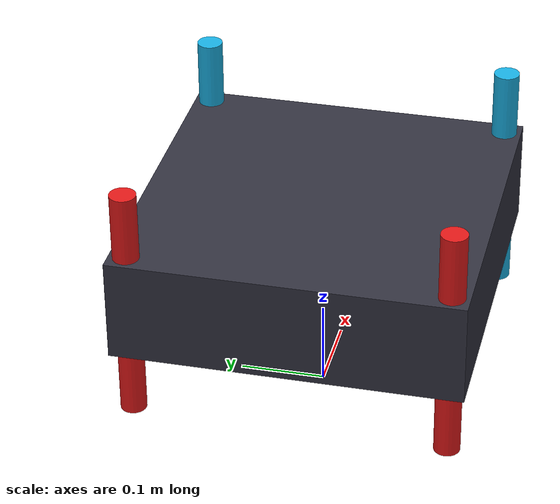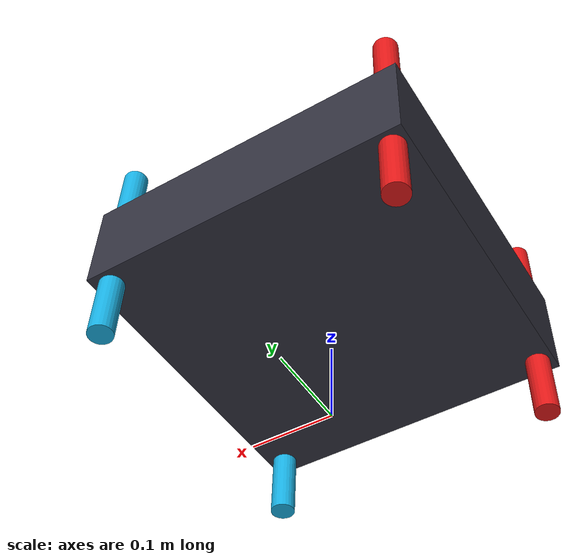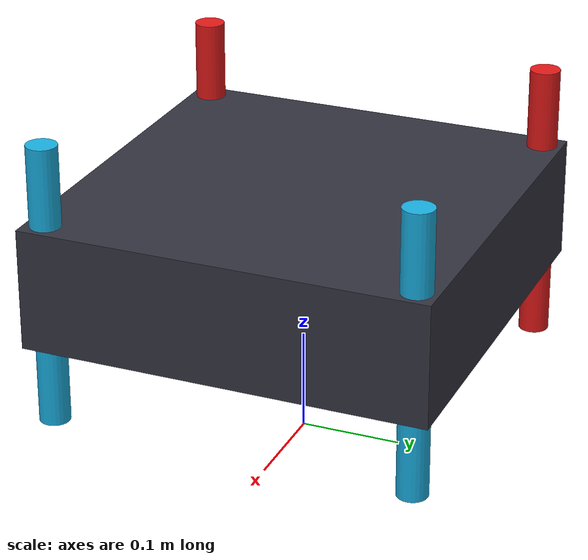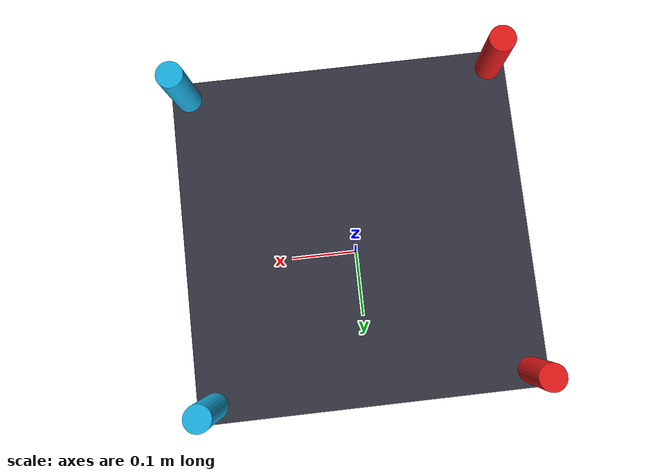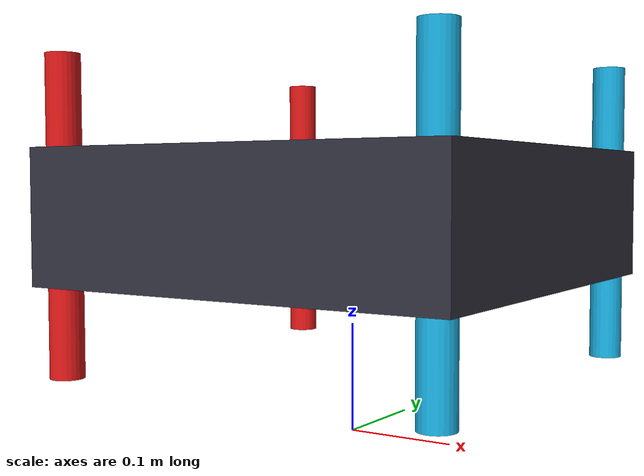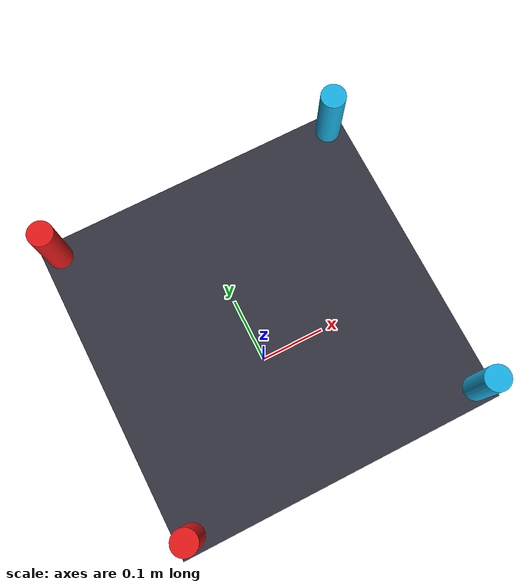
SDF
<?xml version="1.0" encoding="UTF-8"?>
<sdf version="1.9">
  <model name="rescue_drone">
    <pose>0 0 0.2 0 0 0</pose>
    <static>false</static>

    <!-- Main Airframe Link -->
    <link name="base_link">
      <gravity>false</gravity>
      <inertial>
        <mass>1.5</mass>
        <inertia>
          <ixx>0.025</ixx>
          <ixy>0.0</ixy>
          <ixz>0.0</ixz>
          <iyy>0.025</iyy>
          <iyz>0.0</iyz>
          <izz>0.045</izz>
        </inertia>
      </inertial>

      <!-- Center Body Chassis -->
      <collision name="chassis_collision">
        <geometry><box><size>0.4 0.4 0.12</size></box></geometry>
      </collision>
      <visual name="chassis_visual">
        <geometry><box><size>0.4 0.4 0.12</size></box></geometry>
        <material>
          <ambient>0.1 0.1 0.12 1.0</ambient>
          <diffuse>0.2 0.2 0.25 1.0</diffuse>
        </material>
      </visual>

      <!-- Front Left Arm (Motor 1) -->
      <visual name="arm_fl_visual">
        <pose>0.18 0.18 0 0 0 0.785</pose>
        <geometry><cylinder><radius>0.015</radius><length>0.28</length></cylinder></geometry>
        <material><ambient>0.1 0.7 0.9 1.0</ambient><diffuse>0.1 0.7 0.9 1.0</diffuse></material>
      </visual>

      <!-- Front Right Arm (Motor 2) -->
      <visual name="arm_fr_visual">
        <pose>0.18 -0.18 0 0 0 -0.785</pose>
        <geometry><cylinder><radius>0.015</radius><length>0.28</length></cylinder></geometry>
        <material><ambient>0.1 0.7 0.9 1.0</ambient><diffuse>0.1 0.7 0.9 1.0</diffuse></material>
      </visual>

      <!-- Rear Left Arm (Motor 3) -->
      <visual name="arm_rl_visual">
        <pose>-0.18 0.18 0 0 0 -0.785</pose>
        <geometry><cylinder><radius>0.015</radius><length>0.28</length></cylinder></geometry>
        <material><ambient>0.8 0.1 0.1 1.0</ambient><diffuse>0.9 0.1 0.1 1.0</diffuse></material>
      </visual>

      <!-- Rear Right Arm (Motor 4) -->
      <visual name="arm_rr_visual">
        <pose>-0.18 -0.18 0 0 0 0.785</pose>
        <geometry><cylinder><radius>0.015</radius><length>0.28</length></cylinder></geometry>
        <material><ambient>0.8 0.1 0.1 1.0</ambient><diffuse>0.9 0.1 0.1 1.0</diffuse></material>
      </visual>

      <!-- Downward/Angled Rescue Searchlight (Night Operations) -->
      <light type="spot" name="searchlight">
        <pose>0.1 0 -0.05 0 0.785 0</pose> <!-- Angled 45 deg down forward -->
        <diffuse>1.0 0.95 0.8 1.0</diffuse>
        <specular>0.8 0.8 0.8 1.0</specular>
        <attenuation>
          <range>40</range>
          <constant>0.2</constant>
          <linear>0.05</linear>
          <quadratic>0.005</quadratic>
        </attenuation>
        <spot>
          <inner_angle>0.3</inner_angle>
          <outer_angle>0.6</outer_angle>
          <falloff>1.0</falloff>
        </spot>
        <direction>0 0 -1</direction>
      </light>

      <!-- Downward/Forward RGB Camera Sensor -->
      <sensor name="camera" type="camera">
        <pose>0.15 0 -0.05 0 0.52 0</pose> <!-- Tilted 30 degrees down -->
        <always_on>1</always_on>
        <update_rate>20</update_rate>
        <visualize>true</visualize>
        <topic>camera/image_raw</topic>
        <camera>
          <horizontal_fov>1.3962634</horizontal_fov> <!-- 80 deg FOV -->
          <image>
            <width>640</width>
            <height>480</height>
            <format>R8G8B8</format>
          </image>
          <clip>
            <near>0.1</near>
            <far>100</far>
          </clip>
        </camera>
      </sensor>

      <!-- Downward/Forward Thermal IR Camera Sensor -->
      <sensor name="thermal_camera" type="camera">
        <pose>0.15 0.05 -0.05 0 0.52 0</pose> <!-- Tilted 30 degrees down, offset slightly from RGB -->
        <always_on>1</always_on>
        <update_rate>10</update_rate>
        <visualize>true</visualize>
        <topic>thermal_camera/image_raw</topic>
        <camera>
          <horizontal_fov>1.047</horizontal_fov> <!-- 60 deg FOV -->
          <image>
            <width>640</width>
            <height>480</height>
            <format>R8G8B8</format>
          </image>
          <clip>
            <near>0.1</near>
            <far>100</far>
          </clip>
        </camera>
      </sensor>

      <!-- IMU Sensor -->
      <sensor name="imu" type="imu">
        <always_on>1</always_on>
        <update_rate>50</update_rate>
        <topic>imu</topic>
      </sensor>
    </link>

    <!-- Velocity / Odometry Control System Plugin -->
    <plugin filename="gz-sim-velocity-control-system" name="gz::sim::systems::VelocityControl">
      <topic>cmd_vel</topic>
    </plugin>
    <plugin filename="gz-sim-odometry-publisher-system" name="gz::sim::systems::OdometryPublisher">
      <odom_topic>odometry</odom_topic>
      <odom_frame>world</odom_frame>
      <robot_base_frame>base_link</robot_base_frame>
      <dimensions>3</dimensions>
    </plugin>

  </model>
</sdf>
